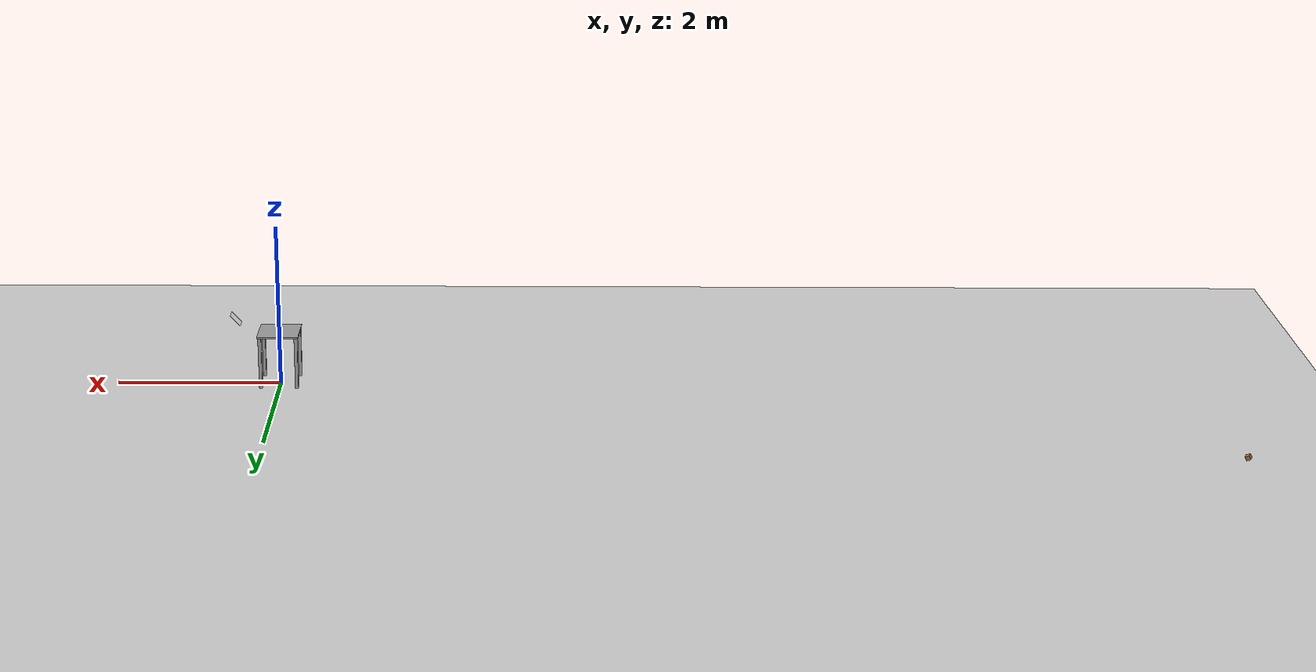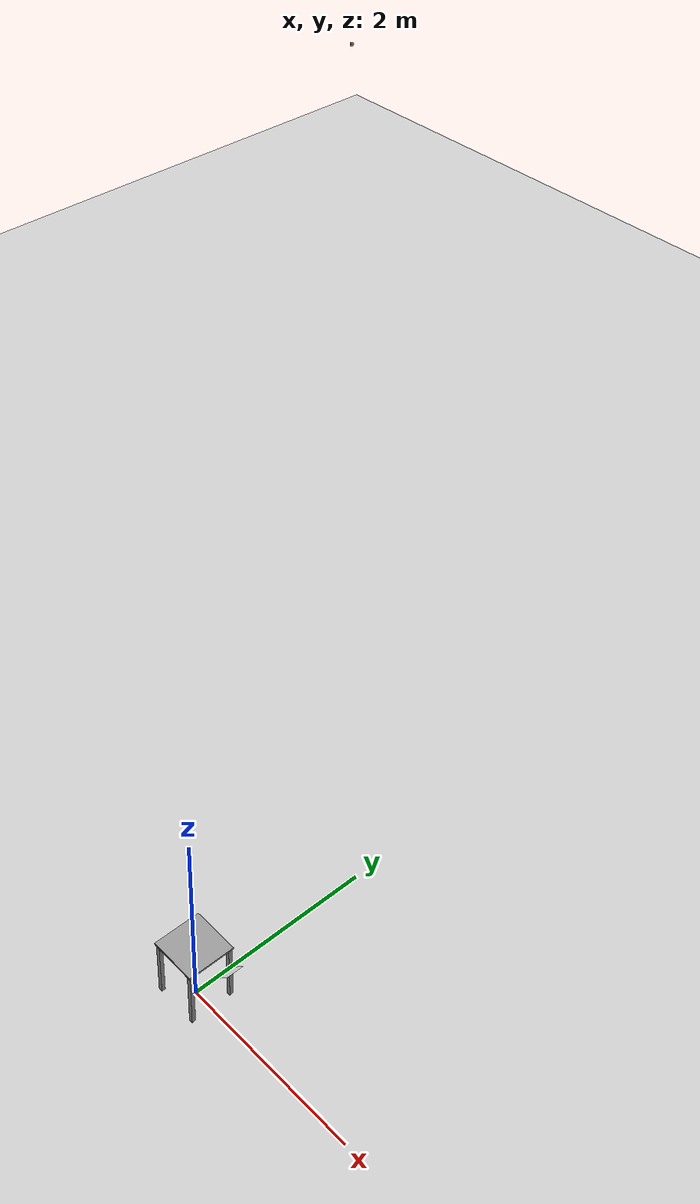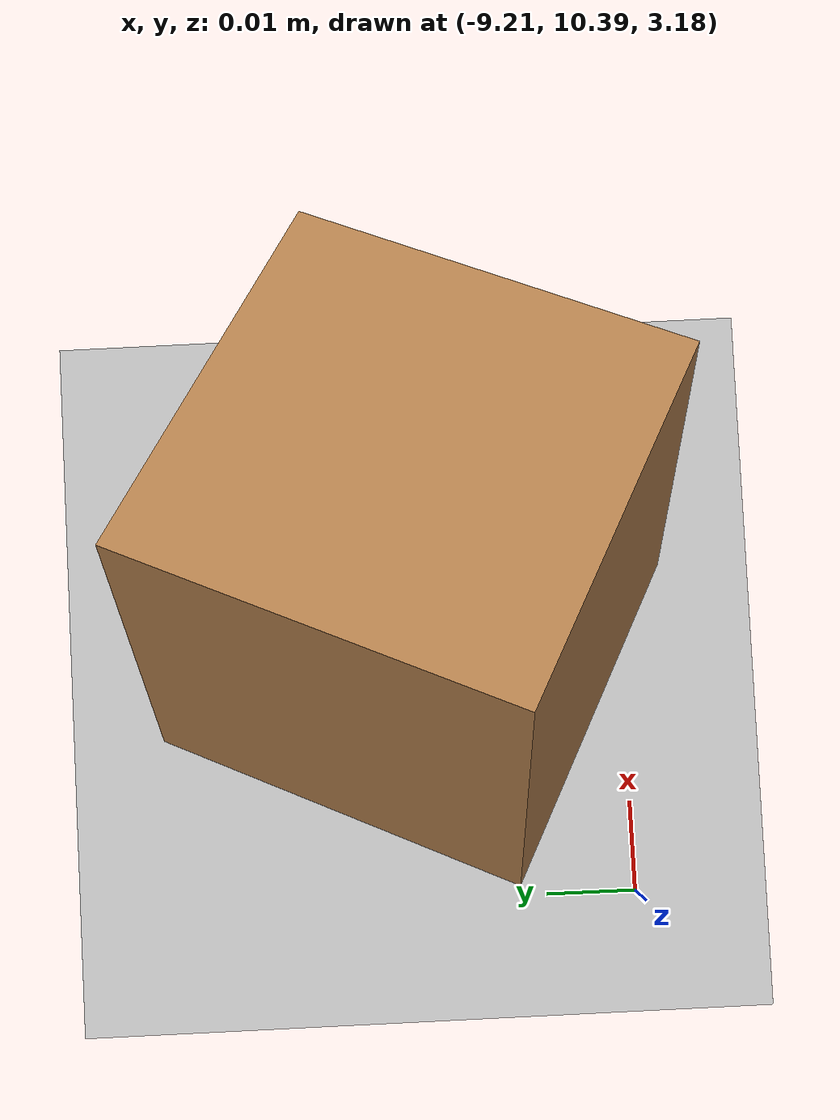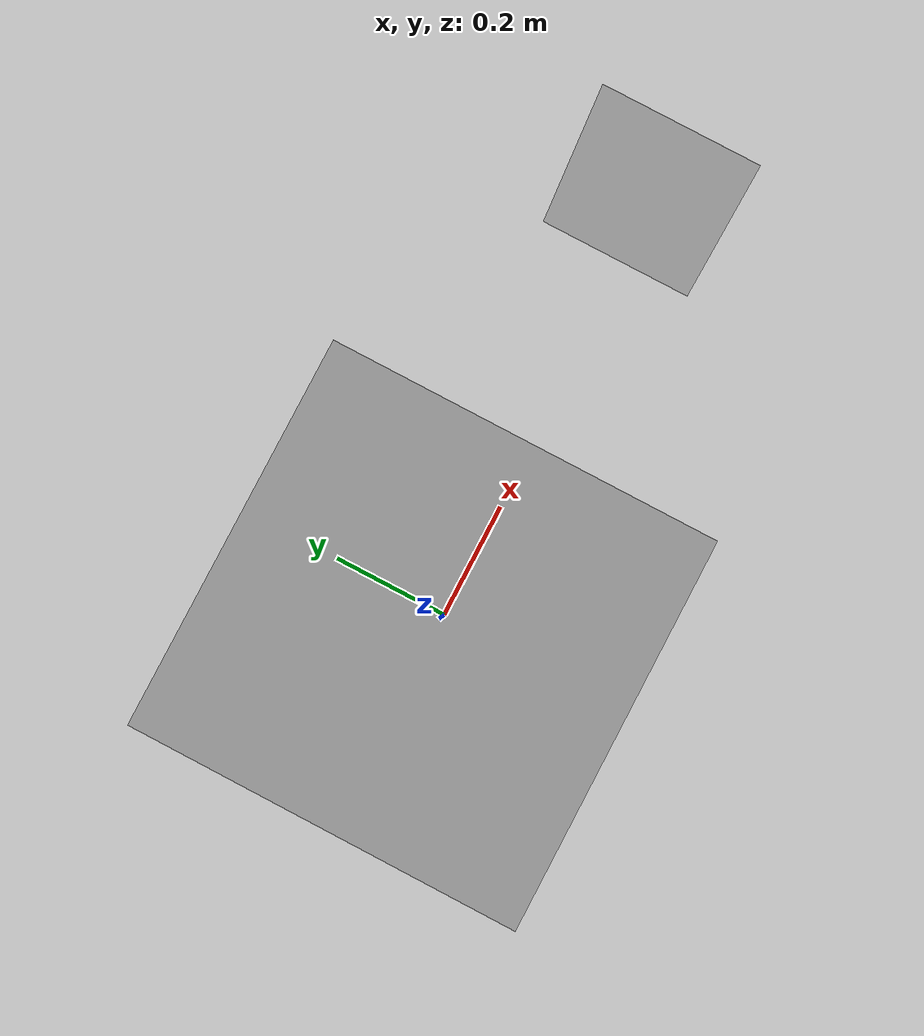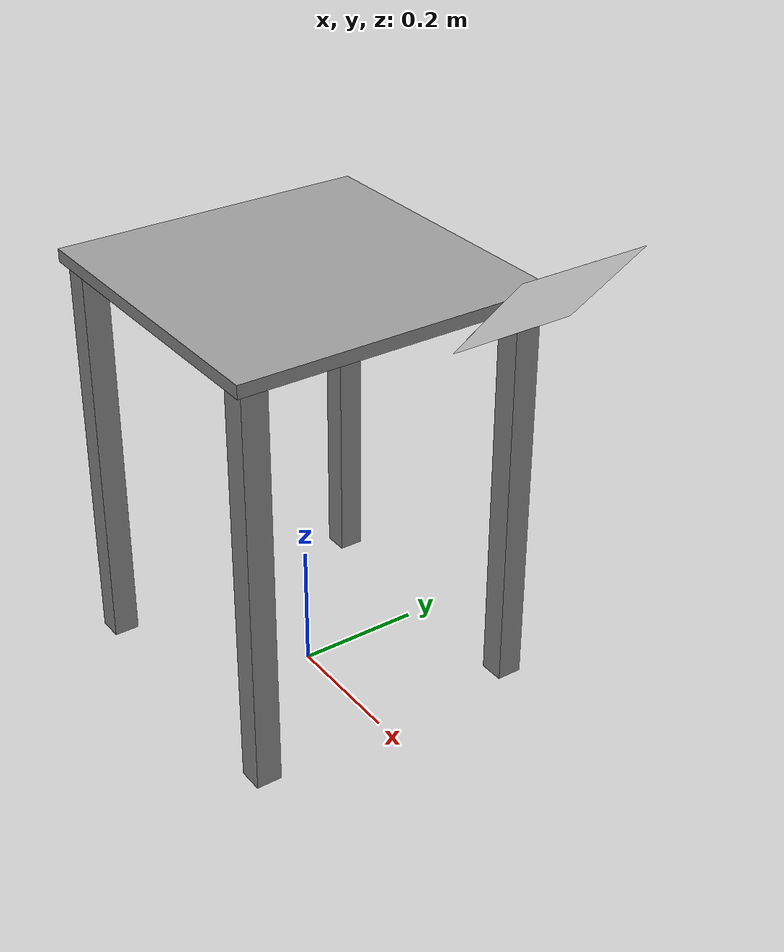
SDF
<sdf version="1.7">
 <world name="ur3_cubes">
  <gravity>0 0 0</gravity>
  <physics name="default_physics" default="0" type="ode">
   <max_step_size>0.001</max_step_size>
   <real_time_factor>1</real_time_factor>
   <real_time_update_rate>1000</real_time_update_rate>
  </physics>
  <plugin name="ros_link_attacher_plugin" filename="libgazebo_ros_link_attacher.so"/>
  <scene><ambient>0.4 0.4 0.4 1</ambient><background>0.4 0.43 0.67 1</background><shadows>1</shadows></scene>
  <light name="sun" type="directional">
   <pose>0 0 10 0 -0 0</pose>
   <diffuse>0.8 0.8 0.8 1</diffuse>
   <specular>0.2 0.2 0.2 1</specular>
   <attenuation>
    <range>1000</range>
    <constant>0.9</constant>
    <linear>0.01</linear>
    <quadratic>0.001</quadratic>
   </attenuation>
   <direction>-0.5 0.1 -0.9</direction>
   <spot><inner_angle>0</inner_angle><outer_angle>0</outer_angle><falloff>0</falloff></spot>
  </light>
  <model name="floor">
   <static>1</static>
   <link name="link">
    <collision name="collision">
     <geometry><plane><normal>0 0 1</normal><size>10 10</size></plane></geometry>
     <surface>
      <contact><collide_bitmask>65535</collide_bitmask></contact>
      <friction><ode><mu>100</mu><mu2>50</mu2></ode></friction>
     </surface>
    </collision>
    <visual name="visual">
     <cast_shadows>0</cast_shadows>
     <geometry><plane><normal>0 0 1</normal><size>100 100</size></plane></geometry>
     <material>
      <script><uri>model://floor/materials/scripts/checkboard.material</uri><name>CheckerTexture</name></script>
     </material>
    </visual>
   </link>
  </model>
  <model name="ur_base">
   <frame name="ur_base::__model__" attached_to="ur_base::top_plate">
    <pose relative_to="__model__">0 0 0 0 -0 0</pose>
   </frame>
   <static>1</static>
   <link name="ur_base::top_plate">
    <pose relative_to="ur_base::__model__">0 0 0.67501 0 -0 0</pose>
    <collision name="top_plate_collision">
     <geometry><box><size>0.5 0.5 0.02</size></box></geometry>
     <surface><contact><collide_bitmask>1</collide_bitmask></contact></surface>
    </collision>
    <visual name="top_plate_visual">
     <geometry><box><size>0.5 0.5 0.02</size></box></geometry>
     <material>
      <script><uri>model://media/materials/scripts/gazebo.material</uri><name>Gazebo/Grey</name></script>
     </material>
    </visual>
   </link>
   <link name="ur_base::leg1">
    <pose relative_to="ur_base::__model__">0.22 0.22 0.35 0 -0 0</pose>
    <visual name="leg1_visual">
     <geometry><box><size>0.04 0.04 0.655</size></box></geometry>
     <material>
      <script><uri>model://media/materials/scripts/gazebo.material</uri><name>Gazebo/Grey</name></script>
     </material>
    </visual>
   </link>
   <link name="ur_base::leg2">
    <pose relative_to="ur_base::__model__">-0.22 0.22 0.35 0 -0 0</pose>
    <visual name="leg2_visual">
     <geometry><box><size>0.04 0.04 0.655</size></box></geometry>
     <material>
      <script><uri>model://media/materials/scripts/gazebo.material</uri><name>Gazebo/Grey</name></script>
     </material>
    </visual>
   </link>
   <link name="ur_base::leg3">
    <pose relative_to="ur_base::__model__">0.22 -0.22 0.35 0 -0 0</pose>
    <visual name="leg3_visual">
     <geometry><box><size>0.04 0.04 0.655</size></box></geometry>
     <material>
      <script><uri>model://media/materials/scripts/gazebo.material</uri><name>Gazebo/Grey</name></script>
     </material>
    </visual>
   </link>
   <link name="ur_base::leg4">
    <pose relative_to="ur_base::__model__">-0.22 -0.22 0.35 0 -0 0</pose>
    <visual name="leg4_visual">
     <geometry><box><size>0.04 0.04 0.655</size></box></geometry>
     <material>
      <script><uri>model://media/materials/scripts/gazebo.material</uri><name>Gazebo/Grey</name></script>
     </material>
    </visual>
   </link>
  </model>
  <model name="cube3">
   <pose>-9.1891 10.4223 3.21915 1.98971 0.200382 1.1561</pose>
   <link name="link">
    <pose>0 0 0.02 0 -0 0</pose>
    <inertial>
     <mass>0.0565</mass>
     <inertia>
      <ixx>2.35417e-05</ixx>
      <ixy>0</ixy>
      <ixz>0</ixz>
      <iyy>2.35417e-05</iyy>
      <iyz>0</iyz>
      <izz>2.35417e-05</izz>
     </inertia>
    </inertial>
    <collision name="collision">
     <geometry><box><size>0.04 0.04 0.04</size></box></geometry>
     <surface>
      <contact>
       <poissons_ratio>0.347</poissons_ratio>
       <elastic_modulus>8.8e+09</elastic_modulus>
       <ode><kp>100000</kp><kd>1</kd><max_vel>1</max_vel><min_depth>0.001</min_depth></ode>
      </contact>
      <friction>
       <torsional>
        <coefficient>1</coefficient>
        <use_patch_radius>0</use_patch_radius>
        <surface_radius>0.05</surface_radius>
       </torsional>
      </friction>
     </surface>
    </collision>
    <visual name="visual">
     <geometry><box><size>0.04 0.04 0.04</size></box></geometry>
     <material>
      <script><uri>model://media/materials/scripts/gazebo.material</uri><name>Gazebo/WoodPallet</name></script>
     </material>
    </visual>
   </link>
  </model>
  <magnetic_field>6e-06 2.3e-05 -4.2e-05</magnetic_field>
  <atmosphere type="adiabatic"/>
  <spherical_coordinates>
   <surface_model>EARTH_WGS84</surface_model>
   <latitude_deg>0</latitude_deg>
   <longitude_deg>0</longitude_deg>
   <elevation>0</elevation>
   <heading_deg>0</heading_deg>
  </spherical_coordinates>
  <model name="aruco_visual_marker_0">
   <link name="marker">
    <visual name="visual">
     <geometry><box><size>0.1778 0.1778 1e-05</size></box></geometry>
     <material>
      <script>
       <uri>model://aruco_visual_marker_0/materials/scripts</uri>
       <uri>model://aruco_visual_marker_0/materials/textures</uri>
       <name>ArucoVisualMarker0/Marker</name>
      </script>
      <ambient>1 1 1 1</ambient>
      <diffuse>1 1 1 1</diffuse>
      <specular>0 0 0 1</specular>
      <emissive>1 1 1 0</emissive>
      <shader type="vertex"><normal_map>__default__</normal_map></shader>
     </material>
    </visual>
    <collision name="collision"><geometry><box><size>0.1778 0.1778 1e-05</size></box></geometry></collision>
   </link>
   <link name="marker_pad">
    <pose relative_to="marker">0 0 -1e-05 0 -0 0</pose>
    <visual name="visual">
     <geometry><box><size>0.1778 0.1778 1e-05</size></box></geometry>
     <material>
      <lighting>1</lighting>
      <script><uri>file://media/materials/scripts/gazebo.material</uri><name>Gazebo/White</name></script>
      <ambient>0.3 0.3 0.3 1</ambient>
      <diffuse>0.7 0.7 0.7 1</diffuse>
      <specular>0.01 0.01 0.01 1</specular>
      <emissive>1 1 1 0</emissive>
      <shader type="vertex"><normal_map>__default__</normal_map></shader>
     </material>
    </visual>
    <collision name="collision"><geometry><box><size>0.1778 0.1778 1e-05</size></box></geometry></collision>
   </link>
   <joint name="marker_JOINT_marker_pad" type="revolute">
    <parent>marker</parent>
    <child>marker_pad</child>
    <axis>
     <xyz>0 0 1</xyz>
     <limit><upper>0</upper><lower>0</lower></limit>
     <dynamics><spring_reference>0</spring_reference><spring_stiffness>0</spring_stiffness></dynamics>
    </axis>
   </joint>
   <static>1</static>
   <pose>0.522583 0.003043 0.837668 0 -0.851133 0</pose>
  </model>
 </world>
</sdf>
